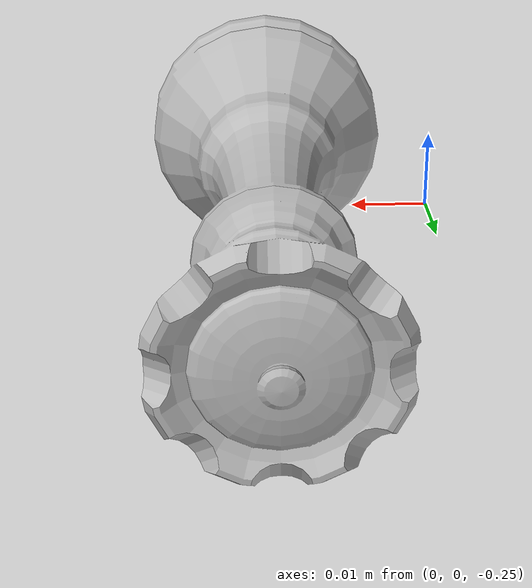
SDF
<?xml version="1.0"?>
<sdf version="1.7">
  <model name="dark_queen">
    <pose>0 0 0 0 0 0</pose>
    <link name="link">
      <inertial>
        <pose>0.021512307692307695 0.016510769230769228 -0.23786769230769234 0 0 0</pose>
        <mass>0.03789378916378334</mass>
        <inertia>
          <ixx>1.6361934879839563e-05</ixx>
          <ixy>0.0</ixy>
          <ixz>0.0</ixz>
          <iyy>5.176777275574313e-06</iyy>
          <iyz>0.0</iyz>
          <izz>1.6361656700561675e-05</izz>
        </inertia>
      </inertial>
      <collision name="collision">
        <pose>0.021512307692307695 0.033021538461538456 -0.23786769230769234 0 0 0</pose>
        <geometry>
          <box>
            <size>0.02862923076923077 0.06604307692307691 0.02863076923076923</size>
          </box>
        </geometry>
      </collision>
      <visual name="box_visual">
        <geometry>
          <mesh>
            <uri>model.obj</uri>
            <scale>0.00015384615384615385 0.00015384615384615385 0.00015384615384615385</scale>
          </mesh>
        </geometry>
      </visual>
    </link>
  </model>
</sdf>
